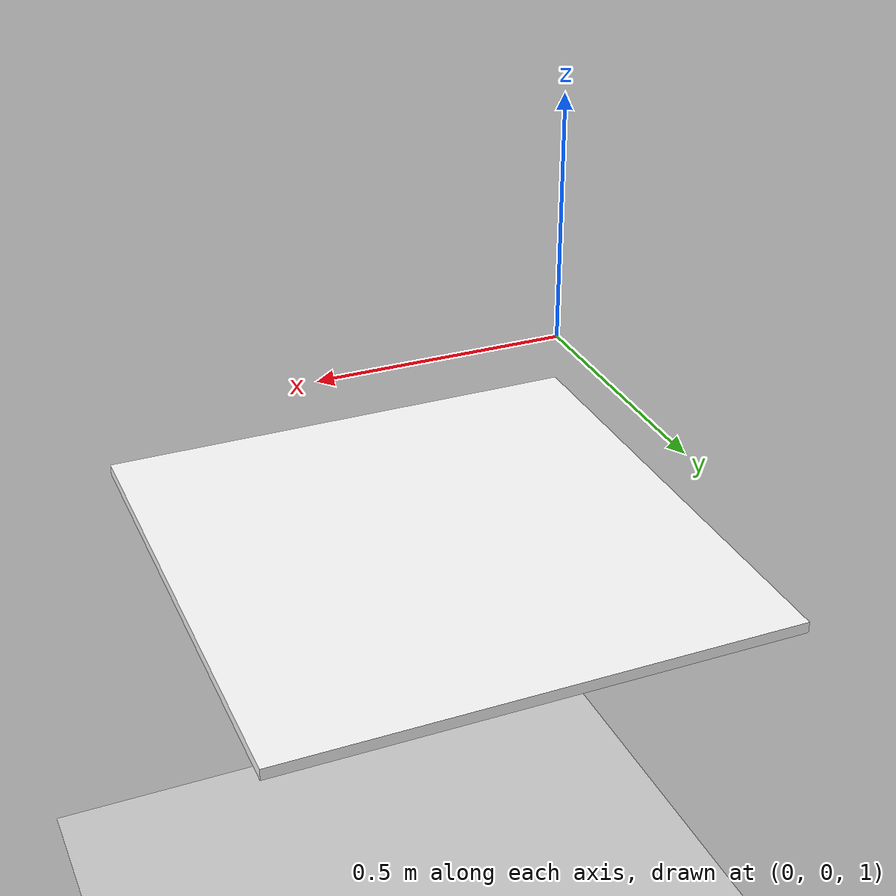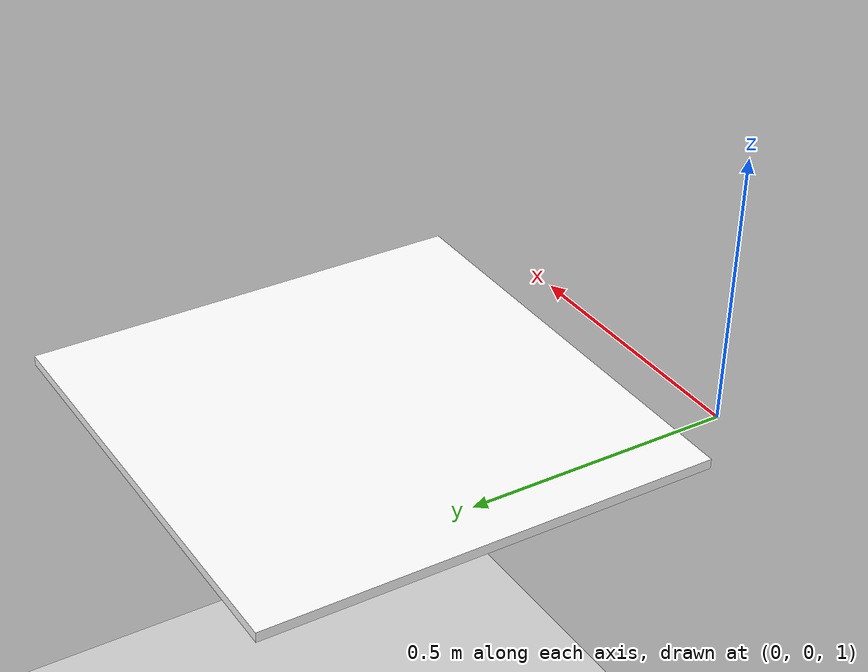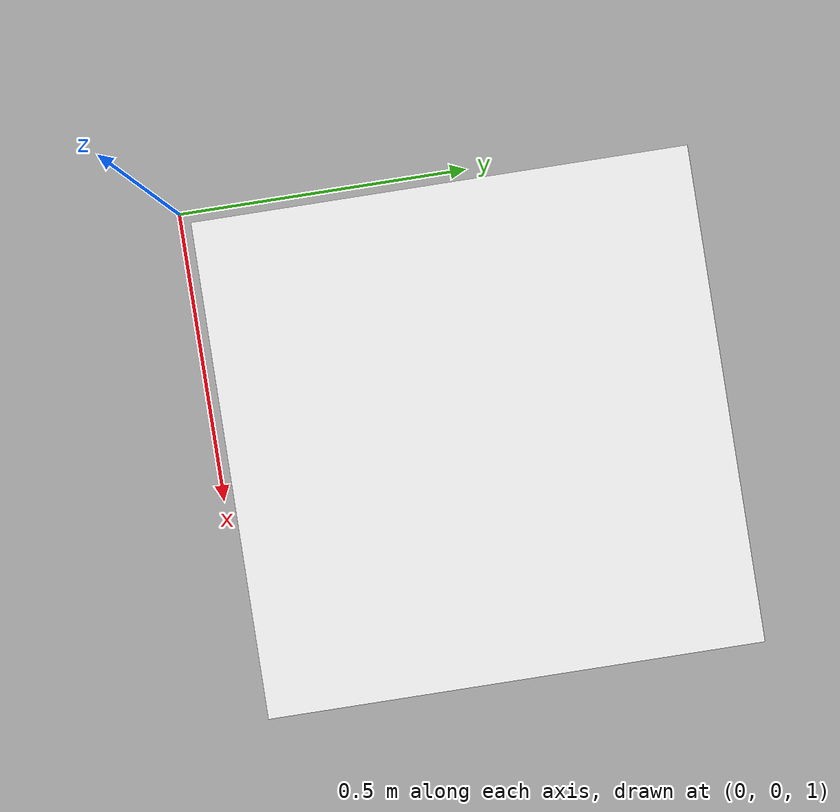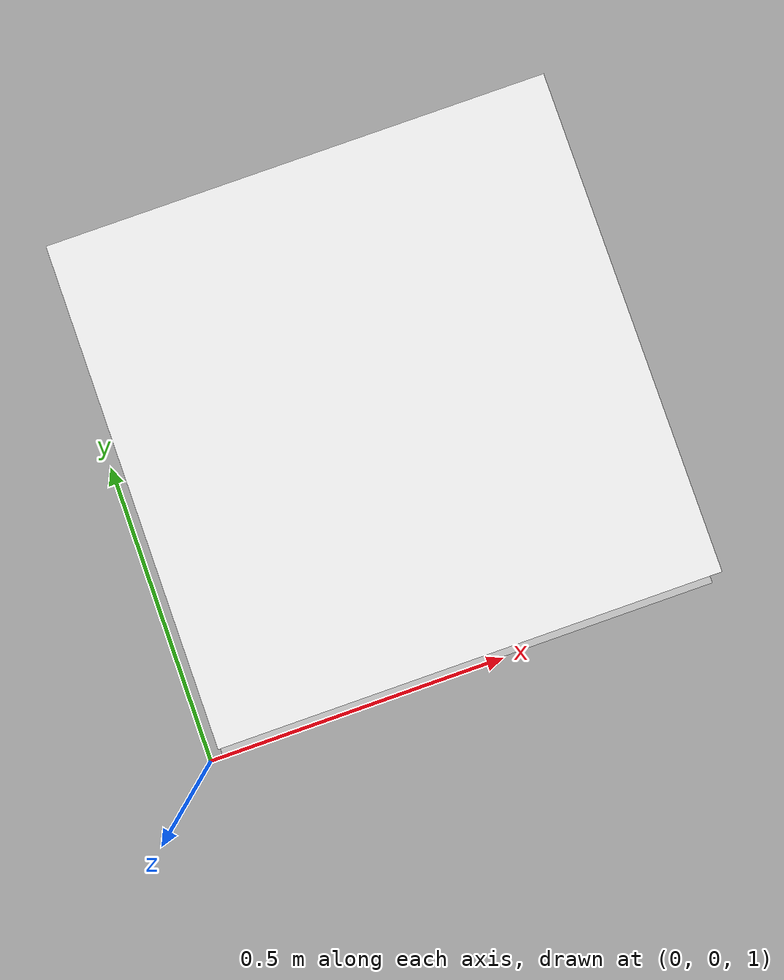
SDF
<?xml version="1.0" ?>
<sdf version="1.6">
  <world name="default">

    <!-- EXPLICIT ENVIRONMENT ELEMENTS (FIX FOR ERROR) -->
    <!-- These models are defined here to fix the Gazebo Harmonic resource path issue. -->

    <!-- Explicit definition of the Sun light source -->
    <light name="sun" type="directional">
      <cast_shadows>true</cast_shadows>
      <pose>0 0 10 0 -0 0</pose>
      <diffuse>0.8 0.8 0.8 1</diffuse>
      <specular>0.2 0.2 0.2 1</specular>
      <direction>0.1 0.1 -0.9</direction>
    </light>

    <!-- Explicit definition of the Ground Plane -->
    <model name="ground_plane">
      <static>true</static>
      <link name="link">
        <collision name="collision">
          <geometry><plane><normal>0 0 1</normal><size>100 100</size></plane></geometry>
        </collision>
        <visual name="visual">
          <geometry><plane><normal>0 0 1</normal><size>100 100</size></plane></geometry>
          <material><ambient>0.8 0.8 0.8 1</ambient><diffuse>0.8 0.8 0.8 1</diffuse></material>
        </visual>
      </link>
    </model>

    <!-- ROBOT ENVIRONMENT (THE WHITEBOARD) -->

    <!-- The Whiteboard Model (90cm x 90cm) -->
    <model name="whiteboard">
      <static>true</static>
      <!-- Placed at Z=0.9 to align with the robot's Z-axis definition -->
      <pose>0.45 0.45 0.9 0 0 0</pose>
      <link name="board_link">
        <visual name="visual">
          <!-- Size: 0.9m x 0.9m, 2cm thick -->
          <geometry><box><size>0.9 0.9 0.02</size></box></geometry>
          <material><ambient>1 1 1 1</ambient><diffuse>1 1 1 1</diffuse></material>
        </visual>
        <collision name="collision">
          <geometry><box><size>0.9 0.9 0.02</size></box></geometry>
        </collision>
      </link>
    </model>

  </world>
</sdf>
